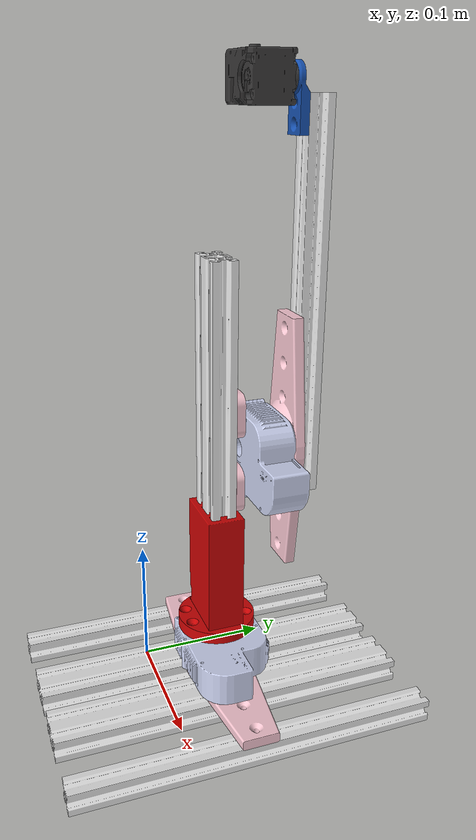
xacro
<?xml version="1.0"?>
<robot xmlns:xacro="http://www.ros.org/wiki/xacro" name="armbot">
    <xacro:arg name="initial_positions_file" default="initial_positions.yaml" />

    <!-- Import armbot urdf file -->
    <xacro:include filename="$(find armbot_description)/onshape_to_robot/armbot/robot.urdf" />

    <!-- Import control_xacro -->
    <xacro:include filename="armbot.ros2_control.xacro" />

    <xacro:armbot_ros2_control name="FakeSystem" initial_positions_file="$(arg initial_positions_file)"/>

</robot>

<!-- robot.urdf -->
<robot name="armbot">
<link name="base_link">
<visual>
<origin xyz="-1.4954010252310467877e-12 0.062950280607105862929 -0.014800447380542768733" rpy="-3.141592653589793116 6.1629758220391415926e-32 1.3684555315672011322e-48" />
<geometry>
<mesh filename="package://armbot_description/onshape_to_robot/armbot/hebirotor2020.stl"/>
</geometry>
<material name="hebirotor2020_material">
<color rgba="0.97254901960784312376 0.78039215686274510109 0.82352941176470584317 1.0"/>
</material>
</visual>
<collision>
<origin xyz="-1.4954010252310467877e-12 0.062950280607105862929 -0.014800447380542768733" rpy="-3.141592653589793116 6.1629758220391415926e-32 1.3684555315672011322e-48" />
<geometry>
<mesh filename="package://armbot_description/onshape_to_robot/armbot/hebirotor2020.stl"/>
</geometry>
</collision>
<inertial>
<origin xyz="1.471073017230224444e-06 0.062950447604268128243 -0.024329139199410744487" rpy="0 0 0"/>
<mass value="0.10897536745364015676" />
<inertia ixx="2.0995325698152185787e-05" ixy="7.161065988428246499e-10"  ixz="-5.0057125776953910516e-10" iyy="0.00033109911054740619922" iyz="-5.8223854087903742578e-11" izz="0.0003490797833931392276" />
</inertial>
</link>

<link name="2040_t-slot_(1ft)">
<visual>
<origin xyz="0.0095000000000000049682 -5.5511151231257827021e-17 -0.0099999999999999603095" rpy="-1.570796326794896558 -1.570796326794896336 0" />
<geometry>
<mesh filename="package://armbot_description/onshape_to_robot/armbot/2040_t-slot_(1ft).stl"/>
</geometry>
<material name="2040_t-slot_(1ft)_material">
<color rgba="0.90196078431372550543 0.90196078431372550543 0.90196078431372550543 1.0"/>
</material>
</visual>
<collision>
<origin xyz="0.0095000000000000049682 -5.5511151231257827021e-17 -0.0099999999999999603095" rpy="-1.570796326794896558 -1.570796326794896336 0" />
<geometry>
<mesh filename="package://armbot_description/onshape_to_robot/armbot/2040_t-slot_(1ft).stl"/>
</geometry>
</collision>
<inertial>
<origin xyz="0.010000627880454622184 -4.1908471395730592803e-17 -0.0099999999999999360234" rpy="0 0 0"/>
<mass value="0.25219173558876550878" />
<inertia ixx="0.0019627392288486663827" ixy="-2.6969609570568084696e-35"  ixz="1.0150876684247982429e-20" iyy="5.108623778154473057e-05" iyz="3.9368967951363812469e-36" izz="0.001993243492111585434" />
</inertial>
</link>

<joint name="Base2040_To_Base_HebiRotor2020" type="fixed">
<origin xyz="-0.038518909366434213315 0.062950280607105876807 -0.030500447380542996395" rpy="1.7347234759768063549e-16 -1.1102230246249800328e-16 1.1102230246371817388e-16" />
<parent link="base_link" />
<child link="2040_t-slot_(1ft)" />
<axis xyz="0 0 1"/>
<limit effort="1" velocity="20.0" />
<joint_properties friction="0.0"/>
</joint>

<link name="hebi_rotor_disc_">
<visual>
<origin xyz="0 0 -0.016049999999999998296" rpy="-1.570796326794896558 -1.1826740086016405326e-42 -1.3866695645463571893e-32" />
<geometry>
<mesh filename="package://armbot_description/onshape_to_robot/armbot/hebi_rotor_disc_.stl"/>
</geometry>
<material name="hebi_rotor_disc__material">
<color rgba="0.79607843137254896693 0.82352941176470584317 0.9372549019607843146 1.0"/>
</material>
</visual>
<collision>
<origin xyz="0 0 -0.016049999999999998296" rpy="-1.570796326794896558 -1.1826740086016405326e-42 -1.3866695645463571893e-32" />
<geometry>
<mesh filename="package://armbot_description/onshape_to_robot/armbot/hebi_rotor_disc_.stl"/>
</geometry>
</collision>
<inertial>
<origin xyz="5.3210870115545232156e-07 -1.2292941858880708096e-05 -0.0034408089083631716344" rpy="0 0 0"/>
<mass value="0.04989516048000000592" />
<inertia ixx="1.0717357666266213602e-05" ixy="-3.2637329147397542116e-13"  ixz="-9.0024786468028005749e-11" iyy="1.0829283098184938749e-05" iyz="5.806007811640654281e-10" izz="2.1283842582398007154e-05" />
</inertial>
</link>

<link name="hebi_stator_">
<visual>
<origin xyz="0 0 -0.010000000000000001943" rpy="-1.57079632679489678 -1.6661176870015304645e-31 2.8740624642040459538e-31" />
<geometry>
<mesh filename="package://armbot_description/onshape_to_robot/armbot/hebi_stator_.stl"/>
</geometry>
<material name="hebi_stator__material">
<color rgba="0.79607843137254896693 0.82352941176470584317 0.9372549019607843146 1.0"/>
</material>
</visual>
<collision>
<origin xyz="0 0 -0.010000000000000001943" rpy="-1.57079632679489678 -1.6661176870015304645e-31 2.8740624642040459538e-31" />
<geometry>
<mesh filename="package://armbot_description/onshape_to_robot/armbot/hebi_stator_.stl"/>
</geometry>
</collision>
<inertial>
<origin xyz="0.018552404497146884194 0.002453397385385477393 -0.010897526582053597421" rpy="0 0 0"/>
<mass value="0.29483503919999992648" />
<inertia ixx="0.00012040144433770747152" ixy="-2.6094887648044854528e-05"  ixz="-4.5177550717948196561e-06" iyy="0.00024371596634352883084" iyz="-5.7552027333109680684e-07" izz="0.0003252797677537240268" />
</inertial>
</link>

<link name="hebistatornormal2040">
<visual>
<origin xyz="0.016163453616779403094 0.009999999999999995004 0" rpy="1.570796326794896558 -1.6661176870015129482e-31 1.2481013388663424568e-32" />
<geometry>
<mesh filename="package://armbot_description/onshape_to_robot/armbot/hebistatornormal2040.stl"/>
</geometry>
<material name="hebistatornormal2040_material">
<color rgba="0.78823529411764703401 0.011764705882352941013 0.011764705882352941013 1.0"/>
</material>
</visual>
<collision>
<origin xyz="0.016163453616779403094 0.009999999999999995004 0" rpy="1.570796326794896558 -1.6661176870015129482e-31 1.2481013388663424568e-32" />
<geometry>
<mesh filename="package://armbot_description/onshape_to_robot/armbot/hebistatornormal2040.stl"/>
</geometry>
</collision>
<inertial>
<origin xyz="0.02633814267204611162 0.010000000134800391544 -0.046566556115122594017" rpy="0 0 0"/>
<mass value="0.15651906882669003318" />
<inertia ixx="0.00020929689747815441209" ixy="-5.8518426155922671031e-11"  ixz="-1.7895630898721051494e-06" iyy="0.0002279104915185418826" iyz="-6.700967350389913429e-13" izz="6.266390998558011335e-05" />
</inertial>
</link>

<link name="2040_t-slot_(1ft)_2">
<visual>
<origin xyz="-0.0099267766952966379757 0.019426776695296681108 -0.15240000000000003544" rpy="7.2025529071766641234e-31 -1.2123977719119917751e-31 -7.1393977580059556565e-32" />
<geometry>
<mesh filename="package://armbot_description/onshape_to_robot/armbot/2040_t-slot_(1ft).stl"/>
</geometry>
<material name="2040_t-slot_(1ft)_material">
<color rgba="0.90196078431372550543 0.90196078431372550543 0.90196078431372550543 1.0"/>
</material>
</visual>
<collision>
<origin xyz="-0.0099267766952966379757 0.019426776695296681108 -0.15240000000000003544" rpy="7.2025529071766641234e-31 -1.2123977719119917751e-31 -7.1393977580059556565e-32" />
<geometry>
<mesh filename="package://armbot_description/onshape_to_robot/armbot/2040_t-slot_(1ft).stl"/>
</geometry>
</collision>
<inertial>
<origin xyz="-0.0099267766952966136895 0.019927404575751296589 -0.15240000000000003544" rpy="0 0 0"/>
<mass value="0.25219173558876550878" />
<inertia ixx="0.001993243492111585434" ixy="5.6263373911296531025e-35"  ixz="2.3982585679834778155e-34" iyy="0.0019627392288486663827" iyz="1.4530350313457342832e-33" izz="5.1086237781544757675e-05" />
</inertial>
</link>

<link name="hebistatorrightangle2040">
<visual>
<origin xyz="-0.01199999999999999678 0 -0.0022247999999999990006" rpy="-1.570796326794896558 -4.7094784995101201527e-31 1.224359819255115732e-32" />
<geometry>
<mesh filename="package://armbot_description/onshape_to_robot/armbot/hebistatorrightangle2040.stl"/>
</geometry>
<material name="hebistatorrightangle2040_material">
<color rgba="0.97254901960784312376 0.78039215686274510109 0.82352941176470584317 1.0"/>
</material>
</visual>
<collision>
<origin xyz="-0.01199999999999999678 0 -0.0022247999999999990006" rpy="-1.570796326794896558 -4.7094784995101201527e-31 1.224359819255115732e-32" />
<geometry>
<mesh filename="package://armbot_description/onshape_to_robot/armbot/hebistatorrightangle2040.stl"/>
</geometry>
</collision>
<inertial>
<origin xyz="-0.010421103655170828317 -5.0858147083795744678e-19 -0.0034889930474717263317" rpy="0 0 0"/>
<mass value="0.026450088103838233222" />
<inertia ixx="2.5671961898538429701e-05" ixy="2.6953425109650467174e-37"  ixz="4.5967177282339475176e-10" iyy="3.656094923152486188e-06" iyz="-1.4247651022418202275e-36" izz="2.9117912025295751956e-05" />
</inertial>
</link>

<link name="hebi_stator__2">
<visual>
<origin xyz="0.012000000000000001985 -0.023999999999999993561 -0.014999999999999999445" rpy="1.570796326794896558 8.724663328634863133e-33 0" />
<geometry>
<mesh filename="package://armbot_description/onshape_to_robot/armbot/hebi_stator_.stl"/>
</geometry>
<material name="hebi_stator__material">
<color rgba="0.79607843137254896693 0.82352941176470584317 0.9372549019607843146 1.0"/>
</material>
</visual>
<collision>
<origin xyz="0.012000000000000001985 -0.023999999999999993561 -0.014999999999999999445" rpy="1.570796326794896558 8.724663328634863133e-33 0" />
<geometry>
<mesh filename="package://armbot_description/onshape_to_robot/armbot/hebi_stator_.stl"/>
</geometry>
</collision>
<inertial>
<origin xyz="0.030552404497146884443 -0.026453397385385470086 -0.014102473417946403966" rpy="0 0 0"/>
<mass value="0.29483503919999992648" />
<inertia ixx="0.00012040144433770747152" ixy="2.6094887648044854528e-05"  ixz="4.5177550717948238913e-06" iyy="0.00024371596634352883084" iyz="-5.7552027333110993585e-07" izz="0.0003252797677537240268" />
</inertial>
</link>

<link name="hebi_rotor_disc__2">
<visual>
<origin xyz="-2.7755575615628913511e-17 0 0.009999999999999995004" rpy="1.570796326794896558 9.6427774785462034982e-32 2.166686409151816355e-31" />
<geometry>
<mesh filename="package://armbot_description/onshape_to_robot/armbot/hebi_rotor_disc_.stl"/>
</geometry>
<material name="hebi_rotor_disc__material">
<color rgba="0.79607843137254896693 0.82352941176470584317 0.9372549019607843146 1.0"/>
</material>
</visual>
<collision>
<origin xyz="-2.7755575615628913511e-17 0 0.009999999999999995004" rpy="1.570796326794896558 9.6427774785462034982e-32 2.166686409151816355e-31" />
<geometry>
<mesh filename="package://armbot_description/onshape_to_robot/armbot/hebi_rotor_disc_.stl"/>
</geometry>
</collision>
<inertial>
<origin xyz="5.3210870112769674594e-07 1.2292941858880708096e-05 -0.0026091910916368320911" rpy="0 0 0"/>
<mass value="0.04989516048000000592" />
<inertia ixx="1.0717357666266213602e-05" ixy="3.2637329147397542116e-13"  ixz="9.0024786468028005749e-11" iyy="1.0829283098184938749e-05" iyz="5.806007811640654281e-10" izz="2.1283842582398007154e-05" />
</inertial>
</link>

<link name="hebirotor2020">
<visual>
<origin xyz="0.016167891820443924811 0.0066969600627775089513 -0.00030000000000000859313" rpy="3.141592653589793116 -9.889601830021382244e-33 4.2739917052898307991e-32" />
<geometry>
<mesh filename="package://armbot_description/onshape_to_robot/armbot/hebirotor2020.stl"/>
</geometry>
<material name="hebirotor2020_material">
<color rgba="0.97254901960784312376 0.78039215686274510109 0.82352941176470584317 1.0"/>
</material>
</visual>
<collision>
<origin xyz="0.016167891820443924811 0.0066969600627775089513 -0.00030000000000000859313" rpy="3.141592653589793116 -9.889601830021382244e-33 4.2739917052898307991e-32" />
<geometry>
<mesh filename="package://armbot_description/onshape_to_robot/armbot/hebirotor2020.stl"/>
</geometry>
</collision>
<inertial>
<origin xyz="0.016169362894956556403 0.0066971270599397794698 -0.0098286918188678525088" rpy="0 0 0"/>
<mass value="0.10897536745364015676" />
<inertia ixx="2.099532569815209092e-05" ixy="7.1610659884281462033e-10"  ixz="-5.0057125776953104015e-10" iyy="0.00033109911054739839297" iyz="-5.8223854086779345631e-11" izz="0.00034907978339312946978" />
</inertial>
</link>

<link name="2020_t-slot_(1ft)">
<visual>
<origin xyz="-0.0070879942314911077716 -5.5511151231257827021e-17 -0.010000000000000008882" rpy="1.570796326794896558 1.570796326794896558 0" />
<geometry>
<mesh filename="package://armbot_description/onshape_to_robot/armbot/2020_t-slot_(1ft).stl"/>
</geometry>
<material name="2020_t-slot_(1ft)_material">
<color rgba="0.90196078431372550543 0.90196078431372550543 0.90196078431372550543 1.0"/>
</material>
</visual>
<collision>
<origin xyz="-0.0070879942314911077716 -5.5511151231257827021e-17 -0.010000000000000008882" rpy="1.570796326794896558 1.570796326794896558 0" />
<geometry>
<mesh filename="package://armbot_description/onshape_to_robot/armbot/2020_t-slot_(1ft).stl"/>
</geometry>
</collision>
<inertial>
<origin xyz="-0.0070879942314911199147 -5.1580089475943055001e-17 -0.0099999999999999984734" rpy="0 0 0"/>
<mass value="0.14544346412865538642" />
<inertia ixx="0.0011319123253517623506" ixy="-3.1943739181766660246e-36"  ixz="8.8422024073716291842e-34" iyy="1.1801323089674781378e-05" iyz="-2.3739847221577131319e-36" izz="0.0011319123253517623506" />
</inertial>
</link>

<link name="dynamount2020">
<visual>
<origin xyz="0.023843291201925909117 -1.7021168055160809662e-05 -0.012499999999999997224" rpy="1.570796326794896558 -0 0" />
<geometry>
<mesh filename="package://armbot_description/onshape_to_robot/armbot/dynamount2020.stl"/>
</geometry>
<material name="dynamount2020_material">
<color rgba="0.08627450980392156743 0.31764705882352939348 0.69019607843137253944 1.0"/>
</material>
</visual>
<collision>
<origin xyz="0.023843291201925909117 -1.7021168055160809662e-05 -0.012499999999999997224" rpy="1.570796326794896558 -0 0" />
<geometry>
<mesh filename="package://armbot_description/onshape_to_robot/armbot/dynamount2020.stl"/>
</geometry>
</collision>
<inertial>
<origin xyz="0.0066512139609104826976 2.437812719165645187e-06 -0.0042091105877174218863" rpy="0 0 0"/>
<mass value="0.00656743569264333759" />
<inertia ixx="2.8707760317925084672e-07" ixy="7.5996646431139962628e-10"  ixz="9.1652725861714266807e-08" iyy="1.1208584748380474788e-06" iyz="3.0603079134551915776e-11" izz="1.338396620352668297e-06" />
</inertial>
</link>

<link name="dc11_a01_horn_ref">
<visual>
<origin xyz="0.0080000000000000001665 0 -0.0034999999999999892308" rpy="1.570796326794896558 1.372467847342714436e-30 0" />
<geometry>
<mesh filename="package://armbot_description/onshape_to_robot/armbot/dc11_a01_horn_ref.stl"/>
</geometry>
<material name="dc11_a01_horn_ref_material">
<color rgba="0.24313725490196078094 0.24313725490196078094 0.24313725490196078094 1.0"/>
</material>
</visual>
<collision>
<origin xyz="0.0080000000000000001665 0 -0.0034999999999999892308" rpy="1.570796326794896558 1.372467847342714436e-30 0" />
<geometry>
<mesh filename="package://armbot_description/onshape_to_robot/armbot/dc11_a01_horn_ref.stl"/>
</geometry>
</collision>
<inertial>
<origin xyz="0.0079996602093214980861 3.916857396192232021e-12 -0.0015863725912065279166" rpy="0 0 0"/>
<mass value="0.011339809200000001976" />
<inertia ixx="3.1759308584662223659e-07" ixy="1.5373973421628969482e-46"  ixz="9.2200454311854088922e-11" iyy="3.1590939815625371744e-07" iyz="-1.1853565631441514472e-16" izz="6.0240878644093353155e-07" />
</inertial>
</link>

<link name="dc14_a01_ref">
<visual>
<origin xyz="0 -0.01200000000000000025 -0.019000000000000002998" rpy="-5.8321988212945059811e-31 -1.1909813599402372975e-31 -1.2619427185750506496e-31" />
<geometry>
<mesh filename="package://armbot_description/onshape_to_robot/armbot/dc14_a01_ref.stl"/>
</geometry>
<material name="dc14_a01_ref_material">
<color rgba="0.22352941176470589313 0.21960784313725489891 0.21960784313725489891 1.0"/>
</material>
</visual>
<collision>
<origin xyz="0 -0.01200000000000000025 -0.019000000000000002998" rpy="-5.8321988212945059811e-31 -1.1909813599402372975e-31 -1.2619427185750506496e-31" />
<geometry>
<mesh filename="package://armbot_description/onshape_to_robot/armbot/dc14_a01_ref.stl"/>
</geometry>
</collision>
<inertial>
<origin xyz="0.00063149261491103972094 -0.011999833658950622914 -0.018368609741091779242" rpy="0 0 0"/>
<mass value="0.43091274960000003347" />
<inertia ixx="0.00011841540290033449794" ixy="5.4747109549488643389e-09"  ixz="2.8692028355177537631e-06" iyy="8.3991546790709148808e-05" iyz="-7.0415392311551074199e-09" izz="0.00011841553809440018427" />
</inertial>
</link>

<link name="dc11_a01_horn_ref_2">
<visual>
<origin xyz="0 3.4694469519536141888e-18 -0.0035000000000000031086" rpy="1.570796326794896558 -5.0314468980647826798e-31 -4.2329414931314420841e-21" />
<geometry>
<mesh filename="package://armbot_description/onshape_to_robot/armbot/dc11_a01_horn_ref.stl"/>
</geometry>
<material name="dc11_a01_horn_ref_material">
<color rgba="0.24313725490196078094 0.24313725490196078094 0.24313725490196078094 1.0"/>
</material>
</visual>
<collision>
<origin xyz="0 3.4694469519536141888e-18 -0.0035000000000000031086" rpy="1.570796326794896558 -5.0314468980647826798e-31 -4.2329414931314420841e-21" />
<geometry>
<mesh filename="package://armbot_description/onshape_to_robot/armbot/dc11_a01_horn_ref.stl"/>
</geometry>
</collision>
<inertial>
<origin xyz="-3.3979067850231433241e-07 3.9168608656391855902e-12 -0.0015863725912065415775" rpy="0 0 0"/>
<mass value="0.011339809200000001976" />
<inertia ixx="3.1759308584662223659e-07" ixy="-1.3917744060918825755e-28"  ixz="9.2200454311854088922e-11" iyy="3.1590939815625371744e-07" iyz="-1.1853565631441553915e-16" izz="6.0240878644093353155e-07" />
</inertial>
</link>

<joint name="DynaRotor_To_Dynamixel_J3" type="revolute">
<origin xyz="0.019000000000000016875 -0.023999999999999990091 -0.019000000000000030753" rpy="1.5707963267981290834 -1.5707105036825337319 1.5707963268983915484" />
<parent link="dc14_a01_ref" />
<child link="dc11_a01_horn_ref_2" />
<axis xyz="0 0 1"/>
<limit effort="1" velocity="20.0" lower="-50.265482457436689856" upper="50.265482457436689856"/>
<joint_properties friction="0.0"/>
</joint>

<joint name="DynaRotor_To_Dynamixel_J2" type="revolute">
<origin xyz="0.0080000000000000001665 5.5511151231257827021e-17 0.00025000002471399496162" rpy="3.5599014307809674267e-15 -8.813389537416573132e-15 1.5707963267948992225" />
<parent link="dc11_a01_horn_ref" />
<child link="dc14_a01_ref" />
<axis xyz="0 0 1"/>
<limit effort="1" velocity="20.0" lower="-3.141592653589793116" upper="1.570796326794896558"/>
<joint_properties friction="0.0"/>
</joint>

<joint name="DynaRotor_to_DynaMount" type="fixed">
<origin xyz="0.023843291201925909117 0.0079829788319448410916 -0.008999999999999980238" rpy="3.551440358039829389e-17 8.3266726846887307526e-17 -1.570796326794896558" />
<parent link="dynamount2020" />
<child link="dc11_a01_horn_ref" />
<axis xyz="0 0 1"/>
<limit effort="1" velocity="20.0" />
<joint_properties friction="0.0"/>
</joint>

<joint name="DynaMount_To_2020" type="fixed">
<origin xyz="-0.0068209999999999998063 0.13839999999999996749 0" rpy="-3.1415926535897926719 -1.0152230506672984265e-15 1.5707963267948972241" />
<parent link="2020_t-slot_(1ft)" />
<child link="dynamount2020" />
<axis xyz="0 0 1"/>
<limit effort="1" velocity="20.0" />
<joint_properties friction="0.0"/>
</joint>

<joint name="2020_To_HebiRotor2020" type="fixed">
<origin xyz="-0.093255248856225880782 0.013696960062777523842 -0.016000000000000000333" rpy="-1.2994123466236261379e-15 -5.2735593669694186252e-16 1.5707963267948972241" />
<parent link="hebirotor2020" />
<child link="2020_t-slot_(1ft)" />
<axis xyz="0 0 1"/>
<limit effort="1" velocity="20.0" />
<joint_properties friction="0.0"/>
</joint>

<joint name="HebiRotor2020_to_J1_Hebi" type="fixed">
<origin xyz="-0.01616789181894767724 -0.0066969600663889690406 -0.0060499999999999998224" rpy="1.1102230246252221145e-16 -1.5233540425402927026e-15 6.0509424482722197083e-16" />
<parent link="hebi_rotor_disc__2" />
<child link="hebirotor2020" />
<axis xyz="0 0 1"/>
<limit effort="1" velocity="20.0" />
<joint_properties friction="0.0"/>
</joint>

<joint name="Hebi_Rotor_J1" type="revolute">
<origin xyz="0.012000000000000001985 -0.023999999999999993561 -0.025000000000000008327" rpy="3.8302694349567979531e-15 2.0107170622416782261e-15 -1.570796326794891673" />
<parent link="hebi_stator__2" />
<child link="hebi_rotor_disc__2" />
<axis xyz="0 0 1"/>
<limit effort="1" velocity="20.0" lower="-2.356194490192344837" upper="2.356194490192344837"/>
<joint_properties friction="0.0"/>
</joint>

<joint name="Hebi_J1_Stator_To_HebiStatorRightAngle" type="fixed">
<origin xyz="-0.0019999999999999965722 -0.023999999999999993561 -0.007000000000000020095" rpy="-4.8210248146452116899e-27 4.7094784994571974888e-31 3.141592653589793116" />
<parent link="hebistatorrightangle2040" />
<child link="hebi_stator__2" />
<axis xyz="0 0 1"/>
<limit effort="1" velocity="20.0" />
<joint_properties friction="0.0"/>
</joint>

<joint name="HebiStatorRightAngle_To_2040" type="fixed">
<origin xyz="7.3223304703343150557e-05 0.0079007882323144738163 -0.15239999999999997993" rpy="1.570796326794896558 7.2025529071818138952e-31 -1.5707963267948934494" />
<parent link="2040_t-slot_(1ft)_2" />
<child link="hebistatorrightangle2040" />
<axis xyz="0 0 1"/>
<limit effort="1" velocity="20.0" />
<joint_properties friction="0.0"/>
</joint>

<joint name="2040_To_HebiStatorNormal" type="fixed">
<origin xyz="0.0060963259151823254167 8.2872298402911215298e-05 -0.010000000000000001943" rpy="4.395634745720240193e-15 1.9402519281805076759e-15 -1.5707963267948972241" />
<parent link="hebistatornormal2040" />
<child link="2040_t-slot_(1ft)_2" />
<axis xyz="0 0 1"/>
<limit effort="1" velocity="20.0" />
<joint_properties friction="0.0"/>
</joint>

<joint name="Hebi_Base_Stator_To_HebiStatorNormal" type="fixed">
<origin xyz="-0.025999999999999998807 -0.010000000000000008882 -0.025000000000000001388" rpy="-4.5165941934516604263e-15 -5.6104222131065772301e-31 2.8740624642035830874e-31" />
<parent link="hebi_stator_" />
<child link="hebistatornormal2040" />
<axis xyz="0 0 1"/>
<limit effort="1" velocity="20.0" />
<joint_properties friction="0.0"/>
</joint>

<joint name="Hebi_Rotor_Base" type="revolute">
<origin xyz="1.5460807775713109823e-17 1.3877787807814456755e-17 -0.0060500000000000102307" rpy="1.5232713836443059971e-15 -2.1484719842119891119e-15 -2.0539125955602208192e-15" />
<parent link="hebi_rotor_disc_" />
<child link="hebi_stator_" />
<axis xyz="0 0 1"/>
<limit effort="1" velocity="20.0" lower="-6.283185307179586232" upper="6.283185307179586232"/>
<joint_properties friction="0.0"/>
</joint>

<joint name="HebiRotor2020_To_HebiBase" type="fixed">
<origin xyz="-1.4954045890469558738e-12 0.062950280607105862929 -0.014500447380542770548" rpy="-3.141592653589793116 -2.2204460492511265937e-16 -2.2204460492878865258e-16" />
<parent link="base_link" />
<child link="hebi_rotor_disc_" />
<axis xyz="0 0 1"/>
<limit effort="1" velocity="20.0" />
<joint_properties friction="0.0"/>
</joint>

<link name="2020_t-slot_(1ft)_2">
<visual>
<origin xyz="0 -5.5511151231257827021e-17 -0.010000000000000012351" rpy="-1.570796326794896558 3.3276911482033396394e-16 -5.4061334650471381626e-47" />
<geometry>
<mesh filename="package://armbot_description/onshape_to_robot/armbot/2020_t-slot_(1ft).stl"/>
</geometry>
<material name="2020_t-slot_(1ft)_material">
<color rgba="0.90196078431372550543 0.90196078431372550543 0.90196078431372550543 1.0"/>
</material>
</visual>
<collision>
<origin xyz="0 -5.5511151231257827021e-17 -0.010000000000000012351" rpy="-1.570796326794896558 3.3276911482033396394e-16 -5.4061334650471381626e-47" />
<geometry>
<mesh filename="package://armbot_description/onshape_to_robot/armbot/2020_t-slot_(1ft).stl"/>
</geometry>
</collision>
<inertial>
<origin xyz="-9.8353322432777684185e-18 -5.9442212986572592879e-17 -0.010000000000000000208" rpy="0 0 0"/>
<mass value="0.14544346412865538642" />
<inertia ixx="0.0011319123253517623506" ixy="-6.2675455574998712598e-50"  ixz="3.1787236362860796971e-84" iyy="1.1801323089674781378e-05" iyz="1.7258042562353164766e-36" izz="0.0011319123253517623506" />
</inertial>
</link>

<joint name="Base_HebiRotor2020_Base2020" type="fixed">
<origin xyz="-0.094518909366434339381 0.062950280607105876807 -0.030500447380542985987" rpy="6.2450045135165043073e-17 1.8489588698446830042e-30 -1.7742878670148968428e-30" />
<parent link="base_link" />
<child link="2020_t-slot_(1ft)_2" />
<axis xyz="0 0 1"/>
<limit effort="1" velocity="20.0" />
<joint_properties friction="0.0"/>
</joint>

<link name="2020_t-slot_(1ft)_3">
<visual>
<origin xyz="0 -5.5511151231257827021e-17 -0.010000000000000008882" rpy="-1.570796326794896558 3.3276911482033396394e-16 6.596349013349935585e-48" />
<geometry>
<mesh filename="package://armbot_description/onshape_to_robot/armbot/2020_t-slot_(1ft).stl"/>
</geometry>
<material name="2020_t-slot_(1ft)_material">
<color rgba="0.90196078431372550543 0.90196078431372550543 0.90196078431372550543 1.0"/>
</material>
</visual>
<collision>
<origin xyz="0 -5.5511151231257827021e-17 -0.010000000000000008882" rpy="-1.570796326794896558 3.3276911482033396394e-16 6.596349013349935585e-48" />
<geometry>
<mesh filename="package://armbot_description/onshape_to_robot/armbot/2020_t-slot_(1ft).stl"/>
</geometry>
</collision>
<inertial>
<origin xyz="-9.8353322432777684185e-18 -5.9442212986572592879e-17 -0.0099999999999999967387" rpy="0 0 0"/>
<mass value="0.14544346412865538642" />
<inertia ixx="0.0011319123253517623506" ixy="8.0824701134638716517e-51"  ixz="-5.490645733991882933e-86" iyy="1.1801323089674781378e-05" iyz="1.7258042562216967358e-36" izz="0.0011319123253517623506" />
</inertial>
</link>

<joint name="Base_HebiRotor2020_Base2020_2" type="fixed">
<origin xyz="0.09451890936344353733 0.062950280607105862929 -0.030500447380542985987" rpy="6.2450045135164944465e-17 -2.0353893147289206465e-32 4.9952976308697872753e-32" />
<parent link="base_link" />
<child link="2020_t-slot_(1ft)_3" />
<axis xyz="0 0 1"/>
<limit effort="1" velocity="20.0" />
<joint_properties friction="0.0"/>
</joint>

<link name="2040_t-slot_(1ft)_3">
<visual>
<origin xyz="0.0095000000000000084377 -4.1633363423443370266e-17 -0.009999999999999963779" rpy="-1.570796326794896558 -1.570796326794896336 0" />
<geometry>
<mesh filename="package://armbot_description/onshape_to_robot/armbot/2040_t-slot_(1ft).stl"/>
</geometry>
<material name="2040_t-slot_(1ft)_material">
<color rgba="0.90196078431372550543 0.90196078431372550543 0.90196078431372550543 1.0"/>
</material>
</visual>
<collision>
<origin xyz="0.0095000000000000084377 -4.1633363423443370266e-17 -0.009999999999999963779" rpy="-1.570796326794896558 -1.570796326794896336 0" />
<geometry>
<mesh filename="package://armbot_description/onshape_to_robot/armbot/2040_t-slot_(1ft).stl"/>
</geometry>
</collision>
<inertial>
<origin xyz="0.010000627880454625654 -2.8030683587916136048e-17 -0.0099999999999999394928" rpy="0 0 0"/>
<mass value="0.25219173558876550878" />
<inertia ixx="0.0019627392288486663827" ixy="2.4663324683811608607e-48"  ixz="1.0150876684247982429e-20" iyy="5.108623778154473057e-05" iyz="-2.1576255848317954455e-35" izz="0.001993243492111585434" />
</inertial>
</link>

<joint name="Base_HebiRotor2020_Base2040_2" type="fixed">
<origin xyz="0.038518909363443418203 0.062950280607105862929 -0.030500447380542996395" rpy="4.8572257327350709577e-17 4.9303806576313128362e-32 -3.141592653589793116" />
<parent link="base_link" />
<child link="2040_t-slot_(1ft)_3" />
<axis xyz="0 0 1"/>
<limit effort="1" velocity="20.0" />
<joint_properties friction="0.0"/>
</joint>

</robot>
